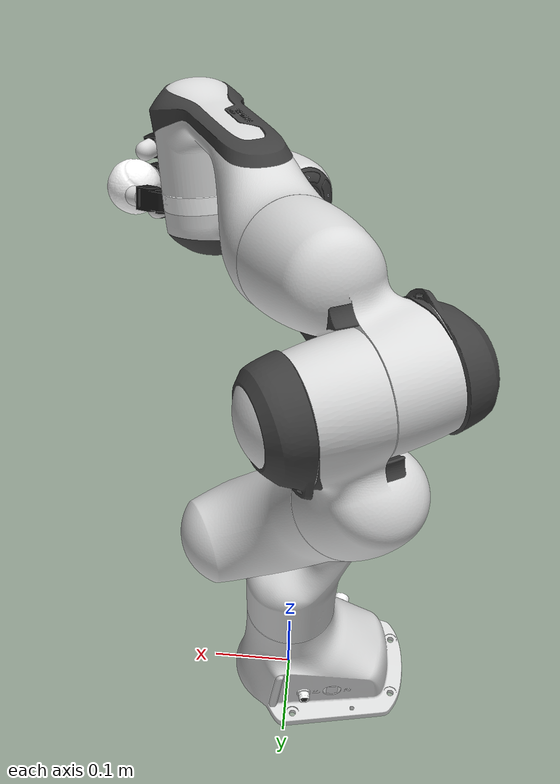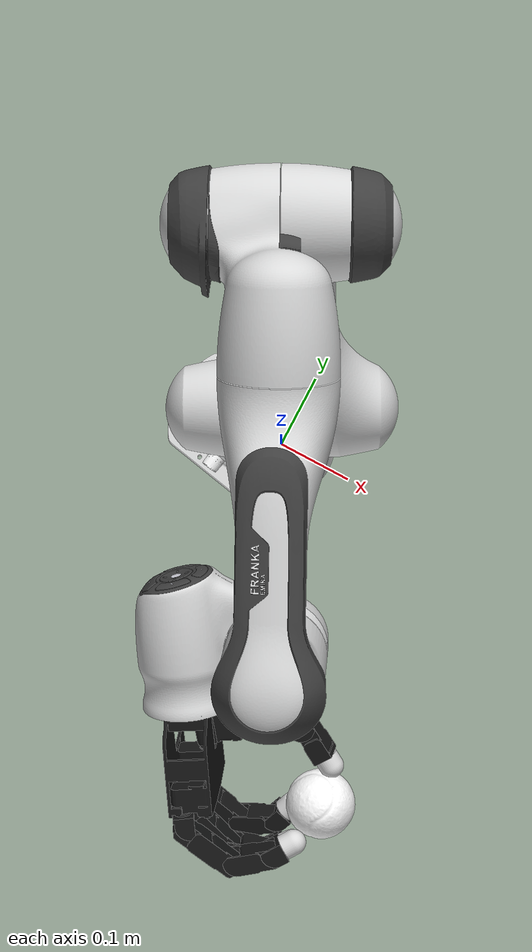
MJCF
<mujoco>
  <compiler angle="radian" assetdir="assets"/>
  <option>
    <flag/>
  </option>
  <statistic/>
  <asset>
    <texture type="2d" colorspace="sRGB" name="texture_map" file="texture_map.png"/>
    <texture type="2d" colorspace="linear" name="noise_normal" file="noise_normal.png"/>
    <material name="material_0" rgba="1.0 1.0 1.0 1.0" reflectance="0.5" roughness="1.0" metallic="0.0">
      <layer texture="texture_map" role="rgb"/>
    </material>
    <material name="aluminum_rough" rgba="0.9621279 0.9653596 0.9658199 1.0" reflectance="0.5" roughness="0.54" metallic="1.0" texuniform="true" texrepeat="12.0 12.0">
      <layer texture="noise_normal" role="normal"/>
    </material>
    <material name="black_rubber" rgba="0.2478005 0.2478005 0.2478005 1.0" reflectance="0.5" roughness="0.7318181" metallic="0.0" texuniform="true" texrepeat="16.0 16.0">
      <layer texture="noise_normal" role="normal"/>
    </material>
    <material name="white_metal" rgba="0.8515661 0.8539651 0.8543058 1.0" reflectance="0.5" roughness="0.2" metallic="0.0" texuniform="true" texrepeat="16.0 16.0">
      <layer texture="noise_normal" role="normal"/>
    </material>
    <material name="gray_plastic" rgba="0.865042 0.8670493 0.9063318 1.0" reflectance="0.5" roughness="0.4" metallic="0.0"/>
    <material name="black_metal" rgba="0.0856791 0.0860513 0.0861042 1.0" reflectance="0.5" roughness="0.4" metallic="0.0" texuniform="true" texrepeat="16.0 16.0">
      <layer texture="noise_normal" role="normal"/>
    </material>
    <material name="black_rubber.001" rgba="0.8543058 0.8543058 0.8543058 1.0" reflectance="0.5" roughness="0.7" metallic="0.0" texuniform="true" texrepeat="16.0 16.0">
      <layer texture="noise_normal" role="normal"/>
    </material>
    <material name="template" rgba="0.9063318 0.9063318 0.9063318 1.0" reflectance="0.5" roughness="0.5" metallic="0.0"/>
    <mesh name="ball" file="ball.obj"/>
    <mesh name="link0_0" file="link0_0.obj"/>
    <mesh name="link0_1" file="link0_1.obj"/>
    <mesh name="link0_2" file="link0_2.obj"/>
    <mesh name="link0_3" file="link0_3.obj"/>
    <mesh name="link0_4" file="link0_4.obj"/>
    <mesh name="link0_5" file="link0_5.obj"/>
    <mesh name="link0_7" file="link0_7.obj"/>
    <mesh name="link0_8" file="link0_8.obj"/>
    <mesh name="link0_9" file="link0_9.obj"/>
    <mesh name="link0_10" file="link0_10.obj"/>
    <mesh name="link0_11" file="link0_11.obj"/>
    <mesh name="link1" file="link1.obj"/>
    <mesh name="link2" file="link2.obj"/>
    <mesh name="link3_0" file="link3_0.obj"/>
    <mesh name="link3_1" file="link3_1.obj"/>
    <mesh name="link3_2" file="link3_2.obj"/>
    <mesh name="link3_3" file="link3_3.obj"/>
    <mesh name="link4_0" file="link4_0.obj"/>
    <mesh name="link4_1" file="link4_1.obj"/>
    <mesh name="link4_2" file="link4_2.obj"/>
    <mesh name="link4_3" file="link4_3.obj"/>
    <mesh name="link5_0" file="link5_0.obj"/>
    <mesh name="link5_1" file="link5_1.obj"/>
    <mesh name="link5_2" file="link5_2.obj"/>
    <mesh name="link6_0" file="link6_0.obj"/>
    <mesh name="link6_1" file="link6_1.obj"/>
    <mesh name="link6_2" file="link6_2.obj"/>
    <mesh name="link6_3" file="link6_3.obj"/>
    <mesh name="link6_4" file="link6_4.obj"/>
    <mesh name="link6_5" file="link6_5.obj"/>
    <mesh name="link6_6" file="link6_6.obj"/>
    <mesh name="link6_7" file="link6_7.obj"/>
    <mesh name="link6_8" file="link6_8.obj"/>
    <mesh name="link6_9" file="link6_9.obj"/>
    <mesh name="link6_10" file="link6_10.obj"/>
    <mesh name="link6_11" file="link6_11.obj"/>
    <mesh name="link6_12" file="link6_12.obj"/>
    <mesh name="link6_13" file="link6_13.obj"/>
    <mesh name="link6_14" file="link6_14.obj"/>
    <mesh name="link6_15" file="link6_15.obj"/>
    <mesh name="link6_16" file="link6_16.obj"/>
    <mesh name="base_link" file="base_link.obj"/>
    <mesh name="link_0_0" file="link_0_0.obj"/>
    <mesh name="link_1_0" file="link_1_0.obj"/>
    <mesh name="link_2_0" file="link_2_0.obj"/>
    <mesh name="link_3_0_tip" file="link_3_0_tip.obj"/>
    <mesh name="link_3_0" file="link_3_0.obj"/>
    <mesh name="link_12_0_right" file="link_12_0_right.obj"/>
    <mesh name="link_13_0" file="link_13_0.obj"/>
    <mesh name="link_14_0" file="link_14_0.obj"/>
    <mesh name="link_15_0" file="link_15_0.obj"/>
    <mesh name="link_15_0_tip" file="link_15_0_tip.obj"/>
    <mesh name="link0_c" file="link0_c.stl"/>
    <mesh name="link1_c" file="link1_c.stl"/>
    <mesh name="link2_c" file="link2_c.stl"/>
    <mesh name="link3_c" file="link3_c.stl"/>
    <mesh name="link4_c" file="link4_c.stl"/>
    <mesh name="link5_c0" file="link5_c0.stl"/>
    <mesh name="link5_c1" file="link5_c1.stl"/>
    <mesh name="link5_c2" file="link5_c2.stl"/>
    <mesh name="link6_c" file="link6_c.stl"/>
  </asset>
  <worldbody>
    <body name="link0" pos="0.0 0.0 0.0" quat="1.0 0.0 0.0 0.0">
      <inertial pos="-0.041018 -0.00014 0.049974" quat="1.0 0.0 0.0 0.0" mass="0.629769" fullinertia="0.00315 0.00388 0.004285 8e-07 0.00015 8.2e-06"/>
      <geom name="link0_0" pos="0.0 0.0 0.0" quat="1.0 0.0 0.0 0.0" type="mesh" mesh="link0_0" material="aluminum_rough" group="2" contype="0" conaffinity="0"/>
      <geom name="link0_1" pos="0.0 0.0 0.0" quat="1.0 0.0 0.0 0.0" type="mesh" mesh="link0_1" material="black_rubber" group="2" contype="0" conaffinity="0"/>
      <geom name="link0_10" pos="0.0 0.0 0.0" quat="1.0 0.0 0.0 0.0" type="mesh" mesh="link0_10" material="aluminum_rough" group="2" contype="0" conaffinity="0"/>
      <geom name="link0_11" pos="0.0 0.0 0.0" quat="1.0 0.0 0.0 0.0" type="mesh" mesh="link0_11" material="white_metal" group="2" contype="0" conaffinity="0"/>
      <geom name="link0_2" pos="0.0 0.0 0.0" quat="1.0 0.0 0.0 0.0" type="mesh" mesh="link0_2" material="aluminum_rough" group="2" contype="0" conaffinity="0"/>
      <geom name="link0_3" pos="0.0 0.0 0.0" quat="1.0 0.0 0.0 0.0" type="mesh" mesh="link0_3" material="black_rubber" group="2" contype="0" conaffinity="0"/>
      <geom name="link0_4" pos="0.0 0.0 0.0" quat="1.0 0.0 0.0 0.0" type="mesh" mesh="link0_4" material="aluminum_rough" group="2" contype="0" conaffinity="0"/>
      <geom name="link0_5" pos="0.0 0.0 0.0" quat="1.0 0.0 0.0 0.0" type="mesh" mesh="link0_5" material="aluminum_rough" group="2" contype="0" conaffinity="0"/>
      <geom name="link0_7" pos="0.0 0.0 0.0" quat="1.0 0.0 0.0 0.0" type="mesh" mesh="link0_7" material="white_metal" group="2" contype="0" conaffinity="0"/>
      <geom name="link0_8" pos="0.0 0.0 0.0" quat="1.0 0.0 0.0 0.0" type="mesh" mesh="link0_8" material="white_metal" group="2" contype="0" conaffinity="0"/>
      <geom name="link0_9" pos="0.0 0.0 0.0" quat="1.0 0.0 0.0 0.0" type="mesh" mesh="link0_9" material="black_rubber" group="2" contype="0" conaffinity="0"/>
      <geom name="link0_c" pos="0.0 0.0 0.0" quat="1.0 0.0 0.0 0.0" type="mesh" mesh="link0_c" group="3" contype="0" conaffinity="0"/>
      <body name="link1" pos="0.0 0.0 0.333" quat="0.8571674 0.0 0.0 -0.515038">
        <inertial pos="0.003875 0.002081 -0.04762" quat="1.0 0.0 0.0 0.0" mass="4.9706841" fullinertia="0.70337 0.70661 0.009117 -0.000139 0.006772 0.019169"/>
        <joint name="joint1" pos="0.0 0.0 0.0" axis="0.0 0.0 1.0" type="hinge" range="-2.8973 2.8973" armature="0.1" damping="40.0"/>
        <geom name="link1_001" pos="0.0 0.0 0.0" quat="1.0 0.0 0.0 0.0" type="mesh" mesh="link1" material="white_metal" group="2" contype="0" conaffinity="0"/>
        <geom name="link1_c" pos="0.0 0.0 -0.333" quat="0.8571674 0.0 0.0 0.515038" type="mesh" mesh="link1_c" group="3" contype="0" conaffinity="0"/>
        <body name="link2" pos="0.0 -0.0 1e-07" quat="0.6705783 -0.6705782 -0.2243318 -0.2243318">
          <inertial pos="-0.003141 -0.02872 0.003495" quat="1.0 0.0 -0.0 0.0" mass="0.646926" fullinertia="0.007962 0.02811 0.025995 -0.003925 0.010254 0.000704"/>
          <joint name="joint2" pos="0.0 0.0 0.0" axis="0.0 -0.0 1.0" type="hinge" range="-1.7628 1.7628" armature="0.1" damping="40.0"/>
          <geom name="link2_001" pos="0.0 -0.0 -0.0" quat="1.0 0.0 -0.0 0.0" type="mesh" mesh="link2" material="white_metal" group="2" contype="0" conaffinity="0"/>
          <geom name="link2_c" pos="-0.2003755 0.2659674 -0.0" quat="0.4592585 0.6903374 -0.1530834 0.5376632" type="mesh" mesh="link2_c" group="3" contype="0" conaffinity="0"/>
          <body name="link3" pos="0.0 -0.316 -0.0" quat="0.7070799 0.7070798 0.0061706 -0.0061706">
            <inertial pos="0.027518 0.039252 -0.066502" quat="1.0 0.0 -0.0 0.0" mass="3.2286041" fullinertia="0.037242 0.036155 0.01083 -0.004761 -0.011396 -0.012805"/>
            <joint name="joint3" pos="0.0 0.0 0.0" axis="-0.0 -0.0 1.0" type="hinge" range="-2.8973 2.8973" armature="0.1" damping="40.0"/>
            <geom name="link3_0" pos="0.0 -0.0 -0.0" quat="1.0 0.0 -0.0 0.0" type="mesh" mesh="link3_0" material="white_metal" group="2" contype="0" conaffinity="0"/>
            <geom name="link3_1" pos="0.0 -0.0 -0.0" quat="1.0 0.0 -0.0 0.0" type="mesh" mesh="link3_1" material="black_rubber" group="2" contype="0" conaffinity="0"/>
            <geom name="link3_2" pos="0.0 -0.0 -0.0" quat="1.0 0.0 -0.0 0.0" type="mesh" mesh="link3_2" material="black_rubber" group="2" contype="0" conaffinity="0"/>
            <geom name="link3_3" pos="0.0 -0.0 -0.0" quat="1.0 0.0 -0.0 0.0" type="mesh" mesh="link3_3" material="black_rubber" group="2" contype="0" conaffinity="0"/>
            <geom name="link3_c" pos="-0.200345 -0.0034969 -0.5819675" quat="0.8085936 0.1610181 0.2733546 0.4955067" type="mesh" mesh="link3_c" group="3" contype="0" conaffinity="0"/>
            <body name="link4" pos="0.0825 0.0 -2e-07" quat="0.1936759 0.1936759 0.6800659 -0.6800659">
              <inertial pos="-0.05317 0.104419 0.027454" quat="1.0 -0.0 0.0 0.0" mass="3.5878949" fullinertia="0.025853 0.019552 0.028323 0.007796 -0.001332 0.008641"/>
              <joint name="joint4" pos="0.0 0.0 0.0" axis="0.0 -0.0 1.0" type="hinge" range="-3.0718 -0.0698" armature="0.1" damping="40.0"/>
              <geom name="link4_0" pos="0.0 -0.0 0.0" quat="1.0 0.0 0.0 0.0" type="mesh" mesh="link4_0" material="black_rubber" group="2" contype="0" conaffinity="0"/>
              <geom name="link4_1" pos="0.0 -0.0 0.0" quat="1.0 0.0 0.0 0.0" type="mesh" mesh="link4_1" material="white_metal" group="2" contype="0" conaffinity="0"/>
              <geom name="link4_2" pos="0.0 -0.0 0.0" quat="1.0 0.0 0.0 0.0" type="mesh" mesh="link4_2" material="black_rubber" group="2" contype="0" conaffinity="0"/>
              <geom name="link4_3" pos="0.0 -0.0 0.0" quat="1.0 0.0 0.0 0.0" type="mesh" mesh="link4_3" material="black_rubber" group="2" contype="0" conaffinity="0"/>
              <geom name="link4_c" pos="0.5470155 0.3456311 0.003497" quat="0.0367123 -0.648296 -0.2914842 0.7024254" type="mesh" mesh="link4_c" group="3" contype="0" conaffinity="0"/>
              <body name="link5" pos="-0.0825001 0.3839999 -1e-07" quat="0.4858025 -0.4858017 0.5138062 0.5138053">
                <inertial pos="-0.011953 0.041065 -0.038437" quat="1.0 0.0 -0.0 0.0" mass="1.2259459" fullinertia="0.035549 0.029474 0.008627 -0.002117 -0.004037 0.000229"/>
                <joint name="joint5" pos="0.0 0.0 0.0" axis="-0.0 0.0 1.0" type="hinge" range="-2.8973 2.8973" armature="0.1" damping="2.0"/>
                <geom name="link5_0" pos="-0.0 -0.0 -0.0" quat="1.0 0.0 -0.0 0.0" type="mesh" mesh="link5_0" material="black_rubber" group="2" contype="0" conaffinity="0"/>
                <geom name="link5_1" pos="-0.0 -0.0 -0.0" quat="1.0 0.0 -0.0 0.0" type="mesh" mesh="link5_1" material="aluminum_rough" group="2" contype="0" conaffinity="0"/>
                <geom name="link5_2" pos="-0.0 -0.0 -0.0" quat="1.0 0.0 -0.0 0.0" type="mesh" mesh="link5_2" material="white_metal" group="2" contype="0" conaffinity="0"/>
                <geom name="link5_c0" pos="-0.0387352 -0.6283326 -0.0383679" quat="0.5439219 -0.8077855 -0.1686082 -0.152325" type="mesh" mesh="link5_c0" group="3" contype="0" conaffinity="0"/>
                <geom name="link5_c1" pos="-0.0387352 -0.6283326 -0.0383679" quat="0.5439219 -0.8077855 -0.1686082 -0.152325" type="mesh" mesh="link5_c1" group="3" contype="0" conaffinity="0"/>
                <geom name="link5_c2" pos="-0.0387352 -0.6283326 -0.0383679" quat="0.5439219 -0.8077855 -0.1686082 -0.152325" type="mesh" mesh="link5_c2" group="3" contype="0" conaffinity="0"/>
                <body name="link6" pos="-1e-07 -1e-07 -1e-07" quat="0.0297841 0.0297841 -0.7064793 0.7064792">
                  <inertial pos="0.060149 -0.014117 -0.010517" quat="1.0 0.0 -0.0 0.0" mass="1.666555" fullinertia="0.001964 0.004354 0.005433 0.000109 -0.001158 0.000341"/>
                  <joint name="joint6" pos="0.0 0.0 0.0" axis="-0.0 0.0 1.0" type="hinge" range="-0.0175 3.7525001" armature="0.1" damping="2.0"/>
                  <geom name="link6_0" pos="0.0 -0.0 0.0" quat="1.0 0.0 0.0 1e-07" type="mesh" mesh="link6_0" material="aluminum_rough" group="2" contype="0" conaffinity="0"/>
                  <geom name="link6_1" pos="0.0 -0.0 0.0" quat="1.0 0.0 0.0 1e-07" type="mesh" mesh="link6_1" material="black_rubber" group="2" contype="0" conaffinity="0"/>
                  <geom name="link6_10" pos="0.0 -0.0 0.0" quat="1.0 0.0 0.0 1e-07" type="mesh" mesh="link6_10" material="black_rubber" group="2" contype="0" conaffinity="0"/>
                  <geom name="link6_11" pos="0.0 -0.0 0.0" quat="1.0 0.0 0.0 1e-07" type="mesh" mesh="link6_11" material="gray_plastic" group="2" contype="0" conaffinity="0"/>
                  <geom name="link6_12" pos="0.0 -0.0 0.0" quat="1.0 0.0 0.0 1e-07" type="mesh" mesh="link6_12" material="gray_plastic" group="2" contype="0" conaffinity="0"/>
                  <geom name="link6_13" pos="0.0 -0.0 0.0" quat="1.0 0.0 0.0 1e-07" type="mesh" mesh="link6_13" material="gray_plastic" group="2" contype="0" conaffinity="0"/>
                  <geom name="link6_14" pos="0.0 -0.0 0.0" quat="1.0 0.0 0.0 1e-07" type="mesh" mesh="link6_14" material="black_rubber" group="2" contype="0" conaffinity="0"/>
                  <geom name="link6_15" pos="0.0 -0.0 0.0" quat="1.0 0.0 0.0 1e-07" type="mesh" mesh="link6_15" material="black_rubber" group="2" contype="0" conaffinity="0"/>
                  <geom name="link6_16" pos="0.0 -0.0 0.0" quat="1.0 0.0 0.0 1e-07" type="mesh" mesh="link6_16" material="white_metal" group="2" contype="0" conaffinity="0"/>
                  <geom name="link6_2" pos="0.0 -0.0 0.0" quat="1.0 0.0 0.0 1e-07" type="mesh" mesh="link6_2" material="black_rubber" group="2" contype="0" conaffinity="0"/>
                  <geom name="link6_3" pos="0.0 -0.0 0.0" quat="1.0 0.0 0.0 1e-07" type="mesh" mesh="link6_3" material="black_rubber" group="2" contype="0" conaffinity="0"/>
                  <geom name="link6_4" pos="0.0 -0.0 0.0" quat="1.0 0.0 0.0 1e-07" type="mesh" mesh="link6_4" material="black_rubber" group="2" contype="0" conaffinity="0"/>
                  <geom name="link6_5" pos="0.0 -0.0 0.0" quat="1.0 0.0 0.0 1e-07" type="mesh" mesh="link6_5" material="black_rubber" group="2" contype="0" conaffinity="0"/>
                  <geom name="link6_6" pos="0.0 -0.0 0.0" quat="1.0 0.0 0.0 1e-07" type="mesh" mesh="link6_6" material="black_rubber" group="2" contype="0" conaffinity="0"/>
                  <geom name="link6_7" pos="0.0 -0.0 0.0" quat="1.0 0.0 0.0 1e-07" type="mesh" mesh="link6_7" material="gray_plastic" group="2" contype="0" conaffinity="0"/>
                  <geom name="link6_8" pos="0.0 -0.0 0.0" quat="1.0 0.0 0.0 1e-07" type="mesh" mesh="link6_8" material="gray_plastic" group="2" contype="0" conaffinity="0"/>
                  <geom name="link6_9" pos="0.0 -0.0 0.0" quat="1.0 0.0 0.0 1e-07" type="mesh" mesh="link6_9" material="white_metal" group="2" contype="0" conaffinity="0"/>
                  <geom name="link6_c" pos="0.0353684 0.0414918 0.6283327" quat="0.0036449 -0.266992 0.9453945 0.1868993" type="mesh" mesh="link6_c" group="3" contype="0" conaffinity="0"/>
                  <body name="link7" pos="0.0880001 -0.0 1e-07" quat="0.7071068 0.7071068 0.0 0.0">
                    <joint name="joint7" pos="0.0 0.0 0.0" axis="0.0 0.0 1.0" type="hinge" range="-2.8973 2.8973" armature="0.1" damping="2.0"/>
                    <geom name="ball" pos="-0.1172306 0.0058809 0.1658868" quat="0.5151688 -0.7436379 0.2291444 -0.3593004" type="mesh" mesh="ball" material="material_0" group="2"/>
                    <body name="palm" pos="0.0092894 -3e-07 0.1467656" quat="1.0 1e-06 1e-07 0.0" gravcomp="1.0">
                      <geom name="base_link" pos="-0.0 0.0 -1e-07" quat="1.0 0.0 -0.0 -0.0" type="mesh" mesh="base_link" material="black_metal" group="2" contype="0" conaffinity="0" density="800.0"/>
                      <geom name="GEO_Box" pos="-0.0093 0.0 -0.0475" quat="0.1862147 0.1913688 -0.800652 0.536338" type="box" size="0.0204 0.0565 0.0475" material="template" group="3" density="800.0"/>
                      <body name="ff_base" pos="-0.0 0.0434999 -0.001542" quat="0.9987252 -0.0436053 -0.0011092 0.0254042">
                        <joint name="ffj0" pos="0.0 0.0 0.0" axis="0.0 0.0 1.0" type="hinge" range="-0.47 0.47" armature="0.01" damping="0.1"/>
                        <geom name="GEO_Box_001" pos="0.0 0.0 0.0082" quat="0.1921459 0.1794998 -0.8276735 0.4957987" type="box" size="0.0098 0.01375 0.0082" material="template" group="3" density="800.0"/>
                        <geom name="link_0_0" pos="0.0 -1e-07 0.0" quat="1.0 -0.0 0.0 -0.0" type="mesh" mesh="link_0_0" material="black_metal" group="2" contype="0" conaffinity="0" density="800.0"/>
                        <body name="ff_proximal" pos="-0.0 -2e-07 0.0164001" quat="0.9275917 0.0 -0.3735956 0.0">
                          <joint name="ffj1" pos="0.0 0.0 0.0" axis="0.0 1.0 1e-07" type="hinge" range="-0.196 1.61" armature="0.01" damping="0.1"/>
                          <geom name="GEO_Box_002" pos="0.0 0.0 0.027" quat="0.4874482 0.3517308 -0.6959583 0.3928385" type="box" size="0.0098 0.01375 0.027" material="template" group="3" density="800.0"/>
                          <geom name="link_1_0" pos="0.0 -0.0 0.0" quat="1.0 -0.0 -0.0 0.0" type="mesh" mesh="link_1_0" material="black_metal" group="2" contype="0" conaffinity="0" density="800.0"/>
                          <body name="ff_medial" pos="1e-07 1e-07 0.054" quat="0.9275985 0.0 -0.3735787 -0.0">
                            <joint name="ffj2" pos="0.0 0.0 0.0" axis="0.0 1.0 1e-07" type="hinge" range="-0.174 1.709" armature="0.01" damping="0.1"/>
                            <geom name="GEO_Box_003" pos="0.0 0.0 0.0192" quat="0.7121513 0.4730208 -0.4634697 0.2329972" type="box" size="0.0098 0.01375 0.0192" material="template" group="3" density="800.0"/>
                            <geom name="link_2_0" pos="-1e-07 -1e-07 0.0" quat="1.0 0.0 -0.0 0.0" type="mesh" mesh="link_2_0" material="black_metal" group="2" contype="0" conaffinity="0" density="800.0"/>
                            <body name="ff_distal" pos="1e-07 -2e-07 0.0384" quat="0.9275892 0.0 -0.3736019 -0.0">
                              <joint name="ffj3" pos="0.0 0.0 0.0" axis="0.0 1.0 1e-07" type="hinge" range="-0.227 1.618" armature="0.01" damping="0.1"/>
                              <geom name="GEO_Box_004" pos="0.0 0.0 0.008" quat="0.833737 0.5258172 -0.1638483 0.0394043" type="box" size="0.0098 0.01375 0.008" material="template" group="3" density="800.0"/>
                              <geom name="link_3_0" pos="0.0 1e-07 0.0" quat="1.0 0.0 -0.0 0.0" type="mesh" mesh="link_3_0" material="black_metal" group="2" contype="0" conaffinity="0" density="800.0"/>
                              <body name="ff_tip" pos="-1e-07 -1e-07 -1e-07" quat="1.0 0.0 0.0 -0.0">
                                <geom name="ff_tip_col" pos="0.0 0.0 0.019" quat="0.833737 0.5258172 -0.1638483 0.0394043" type="capsule" size="0.012 0.01" material="template" group="3" condim="6" friction="2.0 0.05 0.01" density="800.0"/>
                                <geom name="link_3_0_tip" pos="0.0 0.0 0.0267" quat="1.0 -0.0 0.0 0.0" type="mesh" mesh="link_3_0_tip" material="black_rubber.001" group="2" contype="0" conaffinity="0" density="800.0"/>
                              </body>
                            </body>
                          </body>
                        </body>
                      </body>
                      <body name="mf_base" pos="-0.0 1e-07 0.0007" quat="0.9995176 -0.0 0.0 -0.031059">
                        <joint name="mfj0" pos="0.0 0.0 0.0" axis="1e-07 0.0 1.0" type="hinge" range="-0.47 0.47" armature="0.01" damping="0.1"/>
                        <geom name="GEO_Box_005" pos="0.0 0.0 0.0082" quat="0.1694668 0.2161439 -0.7943221 0.5418628" type="box" size="0.0098 0.01375 0.0082" material="template" group="3" density="800.0"/>
                        <geom name="link_001" pos="0.0 0.0 0.0" quat="1.0 -0.0 0.0 0.0" type="mesh" mesh="link_0_0" material="black_metal" group="2" contype="0" conaffinity="0" density="800.0"/>
                        <body name="mf_proximal" pos="1e-07 0.0 0.0164" quat="0.9427835 -0.0 -0.3334057 0.0">
                          <joint name="mfj1" pos="0.0 0.0 0.0" axis="-0.0 1.0 1e-07" type="hinge" range="-0.196 1.61" armature="0.01" damping="0.1"/>
                          <geom name="GEO_Box_006" pos="0.0 0.0 0.027" quat="0.424602 0.3844371 -0.6923725 0.4387958" type="box" size="0.0098 0.01375 0.027" material="template" group="3" density="800.0"/>
                          <geom name="link_002" pos="0.0 0.0 0.0" quat="1.0 0.0 0.0 0.0" type="mesh" mesh="link_1_0" material="black_metal" group="2" contype="0" conaffinity="0" density="800.0"/>
                          <body name="mf_medial" pos="0.0 -4e-07 0.054" quat="0.9507728 -0.0 -0.3098888 0.0">
                            <joint name="mfj2" pos="0.0 0.0 0.0" axis="0.0 1.0 1e-07" type="hinge" range="-0.174 1.709" armature="0.01" damping="0.1"/>
                            <geom name="GEO_Box_007" pos="0.0 0.0 0.0192" quat="0.6182587 0.5014905 -0.5267095 0.2980624" type="box" size="0.0098 0.01375 0.0192" material="template" group="3" density="800.0"/>
                            <geom name="link_003" pos="0.0 0.0 0.0" quat="1.0 -0.0 -0.0 0.0" type="mesh" mesh="link_2_0" material="black_metal" group="2" contype="0" conaffinity="0" density="800.0"/>
                            <body name="mf_distal" pos="0.0 0.0 0.0384001" quat="0.9508801 -0.0 -0.3095595 0.0">
                              <joint name="mfj3" pos="0.0 0.0 0.0" axis="0.0 1.0 1e-07" type="hinge" range="-0.227 1.618" armature="0.01" damping="0.1"/>
                              <geom name="GEO_Box_008" pos="0.0 0.0 0.008" quat="0.7509376 0.5691248 -0.3094499 0.1281806" type="box" size="0.0098 0.01375 0.008" material="template" group="3" density="800.0"/>
                              <geom name="link_004" pos="0.0 0.0 0.0" quat="1.0 -0.0 -0.0 -0.0" type="mesh" mesh="link_3_0" material="black_metal" group="2" contype="0" conaffinity="0" density="800.0"/>
                              <body name="mf_tip" pos="0.0 -2e-07 0.0" quat="1.0 0.0 -1e-07 1e-07">
                                <geom name="link_3_0_001" pos="1e-07 0.0 0.0267" quat="1.0 -0.0 0.0 0.0" type="mesh" mesh="link_3_0_tip" material="black_rubber.001" group="2" contype="0" conaffinity="0" density="800.0"/>
                                <geom name="mf_tip_col" pos="0.0 0.0 0.019" quat="0.7509377 0.5691248 -0.3094499 0.1281805" type="capsule" size="0.012 0.01" material="template" group="3" condim="6" friction="2.0 0.05 0.01" density="800.0"/>
                              </body>
                            </body>
                          </body>
                        </body>
                      </body>
                      <body name="rf_base" pos="-0.0 -0.0434999 -0.0015422" quat="0.9960707 0.0434894 -0.0033652 -0.0770747">
                        <joint name="rfj0" pos="0.0 0.0 0.0" axis="-0.0 0.0 1.0" type="hinge" range="-0.47 0.47" armature="0.01" damping="0.1"/>
                        <geom name="GEO_Box_009" pos="0.0 0.0 0.0082" quat="0.1551618 0.2460333 -0.7588047 0.5827589" type="box" size="0.0098 0.01375 0.0082" material="template" group="3" density="800.0"/>
                        <geom name="link_005" pos="0.0 0.0 0.0" quat="1.0 0.0 -0.0 -0.0" type="mesh" mesh="link_0_0" material="black_metal" group="2" contype="0" conaffinity="0" density="800.0"/>
                        <body name="rf_proximal" pos="-0.0 -1e-07 0.0164001" quat="0.9204001 0.0 -0.3909777 -0.0">
                          <joint name="rfj1" pos="0.0 0.0 0.0" axis="-0.0 1.0 1e-07" type="hinge" range="-0.196 1.61" armature="0.01" damping="0.1"/>
                          <geom name="GEO_Box_010" pos="0.0 0.0 0.027" quat="0.4394868 0.4542949 -0.6377391 0.4401778" type="box" size="0.0098 0.01375 0.027" material="template" group="3" density="800.0"/>
                          <geom name="link_006" pos="0.0 0.0 0.0" quat="1.0 0.0 0.0 0.0" type="mesh" mesh="link_1_0" material="black_metal" group="2" contype="0" conaffinity="0" density="800.0"/>
                          <body name="rf_medial" pos="2e-07 1e-07 0.054" quat="0.916375 0.0 -0.400321 0.0">
                            <joint name="rfj2" pos="0.0 0.0 0.0" axis="0.0 1.0 1e-07" type="hinge" range="-0.174 1.709" armature="0.01" damping="0.1"/>
                            <geom name="GEO_Box_011" pos="0.0 0.0 0.0192" quat="0.6580347 0.5925169 -0.4084726 0.2215039" type="box" size="0.0098 0.01375 0.0192" material="template" group="3" density="800.0"/>
                            <geom name="link_007" pos="0.0 0.0 0.0" quat="1.0 0.0 -0.0 0.0" type="mesh" mesh="link_2_0" material="black_metal" group="2" contype="0" conaffinity="0" density="800.0"/>
                            <body name="rf_distal" pos="0.0 1e-07 0.0383999" quat="0.9841714 0.0 -0.1772193 -0.0">
                              <joint name="rfj3" pos="0.0 0.0 0.0" axis="0.0 1.0 1e-07" type="hinge" range="-0.227 1.618" armature="0.01" damping="0.1"/>
                              <geom name="GEO_Box_012" pos="0.0 0.0 0.008" quat="0.7200084 0.6223928 -0.2853904 0.1129927" type="box" size="0.0098 0.01375 0.008" material="template" group="3" density="800.0"/>
                              <geom name="link_008" pos="0.0 0.0 0.0" quat="1.0 0.0 -0.0 -0.0" type="mesh" mesh="link_3_0" material="black_metal" group="2" contype="0" conaffinity="0" density="800.0"/>
                              <body name="rf_tip" pos="-2e-07 4e-07 -0.0" quat="1.0 -0.0 -1e-07 -0.0">
                                <geom name="link_009" pos="0.0 0.0 0.0267" quat="1.0 0.0 -0.0 0.0" type="mesh" mesh="link_3_0_tip" material="black_rubber.001" group="2" contype="0" conaffinity="0" density="800.0"/>
                                <geom name="rf_tip_col" pos="0.0 0.0 0.019" quat="0.7200084 0.6223928 -0.2853902 0.1129926" type="capsule" size="0.012 0.01" material="template" group="3" condim="6" friction="2.0 0.05 0.01" density="800.0"/>
                              </body>
                            </body>
                          </body>
                        </body>
                      </body>
                      <body name="th_base" pos="-0.0182 0.0193331 -0.0459872" quat="0.6740978 0.0489692 -0.7356498 0.044872">
                        <joint name="thj0" pos="0.0 0.0 0.0" axis="-1.0 -1e-07 -1e-07" type="hinge" range="0.263 1.396" armature="0.01" damping="0.1"/>
                        <geom name="GEO_Box_013" pos="-0.0179 0.009 0.0145" quat="0.7479641 0.4785126 -0.3850523 0.2516153" type="box" size="0.0179 0.017 0.02275" material="template" group="3" density="800.0"/>
                        <geom name="link_12_0_right" pos="-1e-07 0.0 0.0" quat="1.0 0.0 0.0 -0.0" type="mesh" mesh="link_12_0_right" material="black_metal" group="2" contype="0" conaffinity="0" density="800.0"/>
                        <body name="th_proximal" pos="-0.0270001 0.0050001 0.0398999" quat="1.0 0.0 0.0 -0.0">
                          <joint name="thj1" pos="0.0 0.0 0.0" axis="0.0 0.0 1.0" type="hinge" range="-0.105 1.163" armature="0.01" damping="0.1"/>
                          <geom name="GEO_Box_014" pos="0.0 0.0 0.00885" quat="0.7479641 0.4785125 -0.3850523 0.2516153" type="box" size="0.0098 0.01375 0.00885" material="template" group="3" density="800.0"/>
                          <geom name="link_13_0" pos="0.0 1e-07 0.0" quat="1.0 -0.0 0.0 -0.0" type="mesh" mesh="link_13_0" material="black_metal" group="2" contype="0" conaffinity="0" density="800.0"/>
                          <body name="th_medial" pos="-2e-07 2e-07 0.0177" quat="0.9693884 0.0 0.2455325 -0.0">
                            <joint name="thj2" pos="0.0 0.0 0.0" axis="0.0 1.0 1e-07" type="hinge" range="-0.189 1.6440001" armature="0.01" damping="0.1"/>
                            <geom name="GEO_Box_015" pos="0.0 0.0 0.0257" quat="0.6305248 0.4020848 -0.5569148 0.3614034" type="box" size="0.0098 0.01375 0.0257" material="template" group="3" density="800.0"/>
                            <geom name="link_14_0" pos="0.0 1e-07 0.0" quat="1.0 -0.0 -0.0 -0.0" type="mesh" mesh="link_14_0" material="black_metal" group="2" contype="0" conaffinity="0" density="800.0"/>
                            <body name="th_distal" pos="-0.0 0.0 0.0514" quat="0.9433336 -0.0 0.3318459 -0.0">
                              <joint name="thj3" pos="0.0 0.0 0.0" axis="-1e-07 1.0 1e-07" type="hinge" range="-0.162 1.719" armature="0.01" damping="0.1"/>
                              <geom name="GEO_Box_016" pos="0.0 0.0 0.0157" quat="0.4099857 0.25937 -0.7345933 0.4743541" type="box" size="0.0098 0.01375 0.0157" material="template" group="3" density="800.0"/>
                              <geom name="link_15_0" pos="1e-07 1e-07 0.0" quat="1.0 0.0 0.0 0.0" type="mesh" mesh="link_15_0" material="black_metal" group="2" contype="0" conaffinity="0" density="800.0"/>
                              <body name="th_tip" pos="2e-07 3e-07 -0.0" quat="1.0 0.0 1e-07 1e-07">
                                <geom name="link_15_0_tip" pos="-0.0 -0.0 0.0423" quat="1.0 -0.0 0.0 -0.0" type="mesh" mesh="link_15_0_tip" material="black_rubber.001" group="2" contype="0" conaffinity="0" density="800.0"/>
                                <geom name="th_tip_col" pos="0.0 0.0 0.035" quat="0.4099857 0.2593699 -0.7345933 0.4743542" type="capsule" size="0.012 0.008" material="template" group="3" condim="6" friction="2.0 0.05 0.01" density="800.0"/>
                              </body>
                            </body>
                          </body>
                        </body>
                      </body>
                    </body>
                  </body>
                </body>
              </body>
            </body>
          </body>
        </body>
      </body>
    </body>
  </worldbody>
  <contact>
    <exclude body1="palm" body2="ff_base"/>
    <exclude body1="palm" body2="mf_base"/>
    <exclude body1="palm" body2="rf_base"/>
    <exclude body1="palm" body2="th_base"/>
    <exclude body1="palm" body2="th_proximal"/>
  </contact>
  <equality/>
  <actuator>
    <position name="actuator1" joint="joint1" ctrlrange="-2.8973 2.8973" forcerange="-100.0 100.0" kp="1000.0" kv="20.0"/>
    <position name="actuator2" joint="joint2" ctrlrange="-1.7628 1.7628" forcerange="-100.0 100.0" kp="1000.0" kv="20.0"/>
    <position name="actuator3" joint="joint3" ctrlrange="-2.8973 2.8973" forcerange="-100.0 100.0" kp="750.0" kv="4.0"/>
    <position name="actuator4" joint="joint4" ctrlrange="-3.0718 -0.0698" forcerange="-100.0 100.0" kp="750.0" kv="4.0"/>
    <position name="actuator5" joint="joint5" ctrlrange="-2.8973 2.8973" forcerange="-12.0 12.0" kp="300.0" kv="2.0"/>
    <position name="actuator6" joint="joint6" ctrlrange="-0.0175 3.7525001" forcerange="-12.0 12.0" kp="300.0" kv="2.0"/>
    <position name="actuator7" joint="joint7" forcerange="-12.0 12.0" kp="300.0" kv="2.0"/>
    <position name="rfa0" joint="rfj0" ctrlrange="-0.47 0.47"/>
    <position name="mfa2" joint="mfj2" ctrlrange="-0.174 1.709"/>
    <position name="ffa2" joint="ffj2" ctrlrange="-0.174 1.709"/>
    <position name="rfa3" joint="rfj3" ctrlrange="-0.227 1.618"/>
    <position name="tha0" joint="thj0" ctrlrange="0.263 1.396"/>
    <position name="rfa2" joint="rfj2" ctrlrange="-0.174 1.709"/>
    <position name="rfa1" joint="rfj1" ctrlrange="-0.196 1.61"/>
    <position name="ffa3" joint="ffj3" ctrlrange="-0.227 1.618"/>
    <position name="mfa3" joint="mfj3" ctrlrange="-0.227 1.618"/>
    <position name="ffa0" joint="ffj0" ctrlrange="-0.47 0.47"/>
    <position name="tha1" joint="thj1" ctrlrange="-0.105 1.163"/>
    <position name="tha2" joint="thj2" ctrlrange="-0.189 1.6440001"/>
    <position name="tha3" joint="thj3" ctrlrange="-0.162 1.719"/>
    <position name="mfa1" joint="mfj1" ctrlrange="-0.196 1.61"/>
    <position name="ffa1" joint="ffj1" ctrlrange="-0.196 1.61"/>
    <position name="mfa0" joint="mfj0" ctrlrange="-0.47 0.47"/>
  </actuator>
</mujoco>
